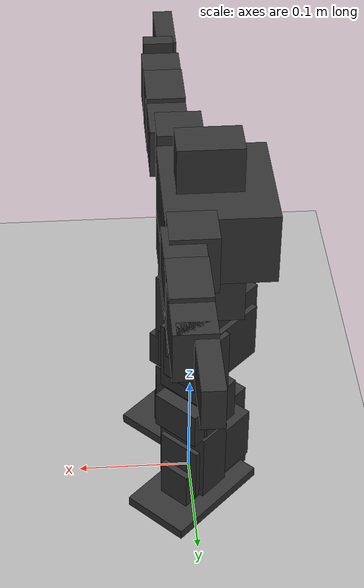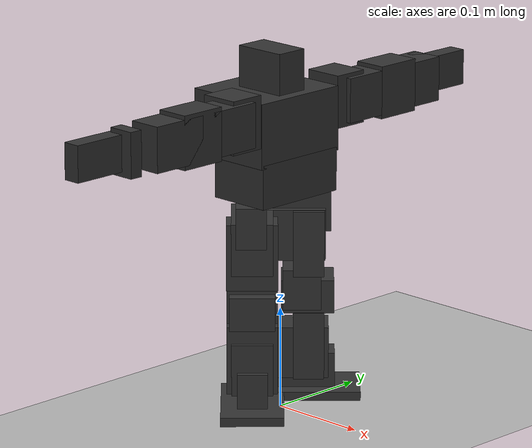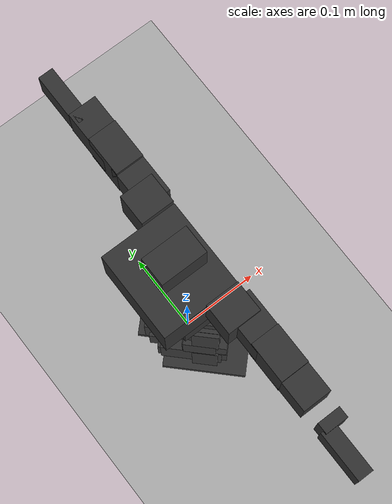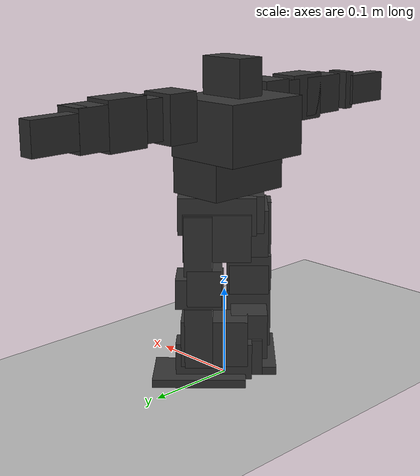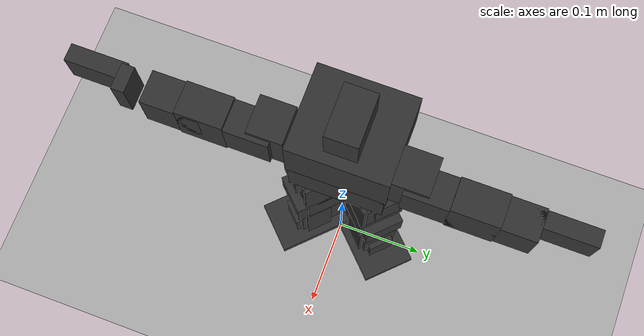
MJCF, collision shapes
<?xml version='1.0' encoding='utf-8'?>
<mujoco model="typea">
  <compiler angle="radian" meshdir="meshes" coordinate="local" />

  <option timestep="0.001" gravity="0 0 -9.81">
    <flag warmstart="enable"/>
  </option>

  <default>
    <mesh scale="0.001 0.001 0.001" />
    <geom rgba="0.7 0.7 0.7 1.0" />
    <joint damping="0.2" frictionloss="0.001" />
    <default class="visual">
      <geom contype="0" conaffinity="0" group="2" />
    </default>
    <default class="collision">
      <geom contype="1" conaffinity="1" group="3" />
    </default>
  </default>

  <asset>
    <mesh name="8b120736_BPF-CHEST-F_FCD-Conv_BDR-Col" file="8b120736_BPF-CHEST-F_FCD-Conv_BDR-Col.stl" scale="0.001 0.001 0.001" />
    <mesh name="94afeb60_BPF-CHEST-B_FCD-Conv_BDR-Col" file="94afeb60_BPF-CHEST-B_FCD-Conv_BDR-Col.stl" scale="0.001 0.001 0.001" />
    <mesh name="df1d2ef7_CM-5_FCD-Conv_BDR-Col" file="df1d2ef7_CM-5_FCD-Conv_BDR-Col.stl" scale="0.001 0.001 0.001" />
    <mesh name="2c813877_AX-S1_FCD-Conv_BDR-Col" file="2c813877_AX-S1_FCD-Conv_BDR-Col.stl" scale="0.001 0.001 0.001" />
    <mesh name="3c0b5d99_AX-12_FCD-Conv_BDR-Col" file="3c0b5d99_AX-12_FCD-Conv_BDR-Col.stl" scale="0.001 0.001 0.001" />
    <mesh name="d8612dc6_FP04-F3_FCD-Conv_BDR-Col" file="d8612dc6_FP04-F3_FCD-Conv_BDR-Col.stl" scale="0.001 0.001 0.001" />
    <mesh name="11c5acbd_FP04-F1_FCD-Conv_BDR-Col" file="11c5acbd_FP04-F1_FCD-Conv_BDR-Col.stl" scale="0.001 0.001 0.001" />
    <mesh name="5f501081_BPF-BU_FCD-Conv_BDR-Col" file="5f501081_BPF-BU_FCD-Conv_BDR-Col.stl" scale="0.001 0.001 0.001" />
    <mesh name="c9bc5e6a_BPF-WA_FCD-Conv_BDR-Col" file="c9bc5e6a_BPF-WA_FCD-Conv_BDR-Col.stl" scale="0.001 0.001 0.001" />
    <mesh name="b04d8bdf_FP04-F2_FCD-Conv_BDR-Col" file="b04d8bdf_FP04-F2_FCD-Conv_BDR-Col.stl" scale="0.001 0.001 0.001" />
    <mesh name="abc2df66_FP04-F11_FCD-Conv_BDR-Col" file="abc2df66_FP04-F11_FCD-Conv_BDR-Col.stl" scale="0.001 0.001 0.001" />
    <mesh name="df207a8e_FP04-F5_FCD-Conv_BDR-Col" file="df207a8e_FP04-F5_FCD-Conv_BDR-Col.stl" scale="0.001 0.001 0.001" />
    <mesh name="c44f3233_FP04-F6_FCD-Conv_BDR-Col" file="c44f3233_FP04-F6_FCD-Conv_BDR-Col.stl" scale="0.001 0.001 0.001" />
    <mesh name="4aa1180e_FP04-F7_FCD-Conv_BDR-Col" file="4aa1180e_FP04-F7_FCD-Conv_BDR-Col.stl" scale="0.001 0.001 0.001" />
    <mesh name="9856e80b_FP04-F4_FCD-Conv_BDR-Col" file="9856e80b_FP04-F4_FCD-Conv_BDR-Col.stl" scale="0.001 0.001 0.001" />
    <mesh name="bc9e07fb_FP04-F12_FCD-Conv_BDR-Col" file="bc9e07fb_FP04-F12_FCD-Conv_BDR-Col.stl" scale="0.001 0.001 0.001" />
    <mesh name="916d31db_Bioloid_CUERPO_vis_4" file="916d31db_Bioloid_CUERPO_vis_4.stl" scale="1.0 1.0 1.0" />
    <mesh name="fe3dec6d_Bioloid_CUERPO_vis_2" file="fe3dec6d_Bioloid_CUERPO_vis_2.stl" scale="1.0 1.0 1.0" />
    <!-- Scene textures/materials -->
    <texture type="skybox" builtin="gradient" rgb1="0.3 0.5 0.7" rgb2="0 0 0" width="512" height="3072"/>
    <texture type="2d" name="groundplane" builtin="checker" mark="edge"
      rgb1="0.2 0.3 0.4" rgb2="0.1 0.2 0.3"
      markrgb="0.8 0.8 0.8" width="300" height="300"/>
    <material name="groundplane" texture="groundplane" texuniform="true" texrepeat="5 5" reflectance="0.2"/>
  </asset>

  <worldbody>
    <!--light mode="targetbodycom" target="torso_link" pos="4 0 1"/-->

    <!-- Ground plane for collision -->
    <!--geom name="floor" type="plane" size="5 5 0.1" rgba="0.8 0.8 0.8 1"/-->

    <!-- Scene light -->
    <light pos="0 0 1.5" dir="0 0 -1" directional="true"/>
    <!-- Ground plane from scene (remove your duplicate floor geom if needed) -->
    <geom name="floor" size="0 0 1" type="plane" material="groundplane" contype="1" conaffinity="1"/>

    <body name="torso_link" pos="0 0 0.30">
      <!-- Add freejoint for floating base -->
      <!--freejoint/-->

    <geom mesh="916d31db_Bioloid_CUERPO_vis_4" type="mesh" pos="0 0 -0.01" euler="0 0 0" rgba="1 0 0 0.95" class="visual" />
    <geom mesh="fe3dec6d_Bioloid_CUERPO_vis_2" type="mesh" pos="0 0 0" euler="0 0 0" rgba="1 0 0 0.95" class="visual" />
    <geom mesh="94afeb60_BPF-CHEST-B_FCD-Conv_BDR-Col" type="mesh" pos="0 0 0" euler="0 1.5708 1.5708" class="visual" />
    <geom mesh="8b120736_BPF-CHEST-F_FCD-Conv_BDR-Col" type="mesh" pos="0 0 0" euler="0 1.5708 1.5708" class="visual" />
    <geom mesh="df1d2ef7_CM-5_FCD-Conv_BDR-Col" type="mesh" pos="-0.032 0 -0.015" euler="3.141592653589793 0 1.5707963267948966" class="visual" />
    <!--geom mesh="2c813877_AX-S1_FCD-Conv_BDR-Col" type="mesh" pos="0 0 0.025" euler="0 -1.5707963267948966 -1.5707963267948966" class="visual" /-->
    <!--geom mesh="3c0b5d99_AX-12_FCD-Conv_BDR-Col" type="mesh" pos="0 -0.032 0" euler="0 1.5707963267948966 0" class="visual" /-->
    <geom mesh="d8612dc6_FP04-F3_FCD-Conv_BDR-Col" type="mesh" pos="-0.019 -0.032 -0.0145" euler="-1.57 3.141592653589793 1.5707963267948966" class="visual" />
    <!--geom mesh="3c0b5d99_AX-12_FCD-Conv_BDR-Col" type="mesh" pos="0 0.032 0"  euler="0 1.5707 1.5707963267948966" class="visual" /-->
    <geom mesh="d8612dc6_FP04-F3_FCD-Conv_BDR-Col" type="mesh" pos="-0.019 0.032 -0.0145" euler="-1.5707 3.141592653589793 1.5707963267948966" class="visual" />
    <geom mesh="d8612dc6_FP04-F3_FCD-Conv_BDR-Col" type="mesh" pos="0.0175 0 -0.0655" euler="0 0 1.5707963267948966" class="visual" />
    <geom mesh="d8612dc6_FP04-F3_FCD-Conv_BDR-Col" type="mesh" pos="-0.0175 0 -0.0655" euler="0 0 -1.5707963267948966" class="visual" />
    <geom mesh="3c0b5d99_AX-12_FCD-Conv_BDR-Col" type="mesh" pos="0 -0.0385 -0.0655" euler="0 3.1415 3.1415" class="visual" />
    <geom mesh="3c0b5d99_AX-12_FCD-Conv_BDR-Col" type="mesh" pos="0 0.0385 -0.0655" euler="0 3.1415 0" class="visual" />
    <geom name="head_collision" size="0.027 0.0165 0.022" pos="-0.0122 0 0.035" type="box" rgba="0.2 0.2 0.2 0.1" class="collision" />
    <geom name="torso_collision_top" size="0.04525 0.0515 0.03175" pos="-0.019 0 -0.015" type="box" rgba="0.2 0.2 0.2 0.1" class="collision" />
    <geom name="torso_collision_bottom" size="0.0325 0.0495 0.0215" pos="-0.00625 0 -0.0648" type="box" rgba="0.2 0.2 0.2 0.1" class="collision" />
    <!-- Torso inertial properties -->
    <inertial pos="-0.0141 0 -0.0199" mass="0.411" diaginertia="7.8941435e-04 7.0070709e-04 5.6784609e-04"/>

    <body name="r_shoulder_swing_link" pos="0 -0.032 0" quat="0.5 0.5 0.5 -0.5">
      <geom mesh="11c5acbd_FP04-F1_FCD-Conv_BDR-Col" type="mesh" pos="0 0.014 0.044" euler="0 3.14159 3.14159" class="visual" />
      <inertial pos="0 0.006 0.0375" quat="0 0.707107 0 0.707107" mass="0.01" diaginertia="3.52e-06 3.33e-06 2.35e-06" />
      <joint name="r_shoulder_swing_joint" pos="0 0 0" axis="0 0 1" range="-1 1.5708" actuatorfrcrange="-2.8 2.8" />
      <geom name="r_shoulder_collision" size="0.026 0.0195 0.018" pos="0 0.006 0.0375" type="box" rgba="0.2 0.2 0.2 0.1" class="collision" />
      <body name="r_upper_arm_link" pos="0 0.014 0.044" quat="0.707107 0 -0.707107 0">
        <geom mesh="3c0b5d99_AX-12_FCD-Conv_BDR-Col" type="mesh" pos="0 0 0" euler="0 0 1.5708" class="visual" />
        <geom mesh="5f501081_BPF-BU_FCD-Conv_BDR-Col" type="mesh" pos="0 0 -0.01850" euler="0 -1.5708 1.5708" class="visual" />
        <geom mesh="c9bc5e6a_BPF-WA_FCD-Conv_BDR-Col" type="mesh" pos="0 0 -0.019" euler="0 -1.5708 1.5708" class="visual" />
        <geom mesh="d8612dc6_FP04-F3_FCD-Conv_BDR-Col" type="mesh" pos="0.0415 0 0" euler="0 0 1.5708" class="visual" />
        <geom mesh="b04d8bdf_FP04-F2_FCD-Conv_BDR-Col" type="mesh" pos="0.0675 0 0" euler="1.5708 -1.5708 1.5708" class="visual" />
        <inertial pos="0.03536 0 0" quat="0.5 0.5 0.5 0.5" mass="0.07" diaginertia="5.746e-05 5.024e-05 1.99e-05" />
        <joint name="r_shoulder_lateral_joint" pos="0 0 0" axis="0 0 -1" range="-1.5 1.5" actuatorfrcrange="-2.8 2.8" />
        <geom name="r_upper arm_collision_proximal" size="0.027 0.0165 0.022" pos="0.0148 0 0" type="box" rgba="0.2 0.2 0.2 0.1" class="collision" />
        <geom name="r_upper arm_collision_distal" size="0.0235 0.0165 0.026" pos="0.0555 0 0" type="box" rgba="0.2 0.2 0.2 0.1" class="collision" />
        <body name="r_lower_arm_link" pos="0.0675 0 0">
          <geom mesh="3c0b5d99_AX-12_FCD-Conv_BDR-Col" type="mesh" pos="0 0 0" euler="0 0 1.5708" class="visual" />
          <geom mesh="5f501081_BPF-BU_FCD-Conv_BDR-Col" type="mesh" pos="0 0 0.0185" euler="0 1.5708 1.5708" class="visual" />
          <geom mesh="c9bc5e6a_BPF-WA_FCD-Conv_BDR-Col" type="mesh" pos="0 0 0.019" euler="0 1.5708 1.5708" class="visual" />
          <geom mesh="d8612dc6_FP04-F3_FCD-Conv_BDR-Col" type="mesh" pos="0.0415 0 0" euler="0 3.1416 -1.5708" class="visual" />
          <inertial pos="0.00554868 -0.0067729 -0.000515957" quat="0.479854 0.473689 0.522751 0.521624" mass="0.068" diaginertia="7.12121e-05 6.73943e-05 1.78853e-05" />
          <joint name="r_elbow_joint" pos="0 0 0" axis="0 0 -1" range="-1.77 1.77" actuatorfrcrange="-2.8 2.8" />
          <geom name="r_lower_arm_collision" size="0.029 0.0165 0.022" pos="0.017 0 0" type="box" rgba="0.2 0.2 0.2 0.1" class="collision" />
          <body name="r_hand_link" pos="0.03 0 0">
            <geom mesh="abc2df66_FP04-F11_FCD-Conv_BDR-Col" type="mesh" pos="0 0 0" euler="-3.14 01.57 0" class="visual" />
            <geom name="r_palm_collision" size="0.00655 0.01325 0.022" pos="0.039 0 0" type="box" rgba="0.2 0.2 0.2 0.1" class="collision" />
            <geom name="r_fingers_collision" size="0.02875 0.00875 0.0175" pos="0.0701 -0.0077 0" type="box" rgba="0.2 0.2 0.2 0.1" class="collision" />
          </body>
        </body>
      </body>
    </body>
    <body name="l_shoulder_swing_link" pos="0 0.032 0" quat="0.5 -0.5 -0.5 -0.5">
      <geom mesh="11c5acbd_FP04-F1_FCD-Conv_BDR-Col" type="mesh" pos="0 0.014 0.044" euler="0 3.14159 3.14159" class="visual" />
      <inertial pos="0 0.006 0.0375" quat="0 0.707107 0 0.707107" mass="0.01" diaginertia="3.52e-06 3.33e-06 2.35e-06" />
      <joint name="l_shoulder_swing_joint" pos="0 0 0" axis="0 0 1" range="-1 1.5708" actuatorfrcrange="-2.8 2.8" />
      <geom name="l_shoulder_collision" size="0.026 0.0195 0.018" pos="0 0.006 0.0375" type="box" rgba="0.2 0.2 0.2 0.1" class="collision" />
      <body name="l_upper_arm_link" pos="0 0.014 0.044" quat="0.707107 0 -0.707107 0">
        <geom mesh="3c0b5d99_AX-12_FCD-Conv_BDR-Col" type="mesh" pos="0 0 0" euler="0 3.14159 -1.5708" class="visual" />
        <geom mesh="5f501081_BPF-BU_FCD-Conv_BDR-Col" type="mesh" pos="0 0 0.01850" euler="0 1.5708 1.5708" class="visual" />
        <geom mesh="c9bc5e6a_BPF-WA_FCD-Conv_BDR-Col" type="mesh" pos="0 0 0.019" euler="0 1.5708 1.5708" class="visual" />
        <geom mesh="d8612dc6_FP04-F3_FCD-Conv_BDR-Col" type="mesh" pos="0.0415 0 0" euler="3.14 0 1.5708" class="visual" />
        <geom mesh="b04d8bdf_FP04-F2_FCD-Conv_BDR-Col" type="mesh" pos="0.0675 0 0" euler="1.5708 -1.5708 1.5708" class="visual" />
        <inertial pos="0.03536 0 0" quat="0.5 0.5 0.5 0.5" mass="0.07" diaginertia="5.746e-05 5.024e-05 1.99e-05" />
        <joint name="l_shoulder_lateral_joint" pos="0 0 0" axis="0 0 1" range="-1.5 1.5" actuatorfrcrange="-2.8 2.8" />
        <geom name="l_upper arm_collision_proximal" size="0.027 0.0165 0.022" pos="0.0148 0 0" type="box" rgba="0.2 0.2 0.2 0.1" class="collision" />
        <geom name="l_upper arm_collision_distal" size="0.0235 0.0165 0.026" pos="0.0555 0 0" type="box" rgba="0.2 0.2 0.2 0.1" class="collision" />
        <body name="l_lower_arm_link" pos="0.0675 0 0">
          <geom mesh="3c0b5d99_AX-12_FCD-Conv_BDR-Col" type="mesh" pos="0 0 0" euler="0 3.14159 -1.5708" class="visual" />
          <geom mesh="5f501081_BPF-BU_FCD-Conv_BDR-Col" type="mesh" pos="0 0 0.0185" euler="-1.5708 3.14 -1.5708" class="visual" />
          <geom mesh="c9bc5e6a_BPF-WA_FCD-Conv_BDR-Col" type="mesh" pos="0 0 0.019" euler="-1.5708 3.14 -1.5708" class="visual" />
          <geom mesh="d8612dc6_FP04-F3_FCD-Conv_BDR-Col" type="mesh" pos="0.0415 0 0" euler="0 3.14 -1.5708" class="visual" />
          <inertial pos="0.00641783 0.00557279 -0.000592108" quat="0.519286 0.520103 0.476239 0.482733" mass="0.068" diaginertia="7.03478e-05 6.6411e-05 1.77672e-05" />
          <joint name="l_elbow_joint" pos="0 0 0" axis="0 0 1" range="-1.77 1.77" actuatorfrcrange="-2.8 2.8" />
          <geom name="l_lower_arm_collision" size="0.029 0.0165 0.022" pos="0.017 0 0" type="box" rgba="0.2 0.2 0.2 0.1" class="collision" />
          <body name="l_hand_link" pos="0 0 0">
            <geom mesh="abc2df66_FP04-F11_FCD-Conv_BDR-Col" type="mesh" pos="0.0415 0 0" euler="-3.14 1.57 0" class="visual" />
            <geom name="l_palm_collision" size="0.00655 0.01325 0.022" pos="0.039 0 0" type="box" rgba="0.2 0.2 0.2 0.1" class="collision" />
            <geom name="l_fingers_collision" size="0.02875 0.00875 0.0175" pos="0.0701 -0.0077 0" type="box" rgba="0.2 0.2 0.2 0.1" class="collision" />
          </body>
        </body>
      </body>
    </body>
    <body name="r_hip_twist_link" pos="0 -0.0385 -0.0655" quat="0 -0.383885 0.923381 0">
      <geom mesh="df207a8e_FP04-F5_FCD-Conv_BDR-Col" type="mesh" pos="0 0.02 0.05" euler="3.14159 0 3.14159" class="visual" />
      <inertial pos="0.0008 0.02 0.041" quat="0.707107 0.707107 0 0" mass="0.016" diaginertia="1.1372e-05 1.0307e-05 3.3083e-06" />
      <joint name="r_hip_twist_joint" pos="0 0 0" axis="0 0 1" range="-0.8 0.8" actuatorfrcrange="-10 10" />
      <geom name="r_hip_twist_collision" size="0.0145 0.0415 0.02025" pos="0.0008 0.02 0.041" type="box" rgba="0.2 0.2 0.2 0.1" class="collision" />
      <body name="r_hip_lateral_link" pos="0 0 0.05" quat="0.707107 -0.707107 0 0">
        <!-- URDF rpy="0 0 -0.0" -> euler="0 0 0" -->
        <geom mesh="3c0b5d99_AX-12_FCD-Conv_BDR-Col" type="mesh" pos="0 0 0.0353" euler="0 0 0" class="visual" />
        <!-- URDF rpy="0 -1.5708 -1.5708" -> euler="0 -1.5708 -1.5708" -->
        <geom mesh="c44f3233_FP04-F6_FCD-Conv_BDR-Col" type="mesh" pos="-0.019 -0.0145 0.0513" euler="-1.5708 0 -1.5708" class="visual" />
        <!-- URDF rpy="0 -1.5708 1.5708" -> euler="0 -1.5708 1.5708" -->
        <geom mesh="c44f3233_FP04-F6_FCD-Conv_BDR-Col" type="mesh" pos="0.019 -0.0145 0.0513" euler="-1.5708 3.14 -1.5708" class="visual" />
        <!-- URDF rpy="-0.0 -1.5708 0" -> euler="0 -1.5708 0" -->
        <geom mesh="3c0b5d99_AX-12_FCD-Conv_BDR-Col" type="mesh" pos="0 0 0.003" euler="0 1.5708 0" class="visual" />
        <!-- URDF rpy="-1.5708 -0.0 0" -> euler="-1.5708 0 0" -->
        <geom mesh="5f501081_BPF-BU_FCD-Conv_BDR-Col" type="mesh" pos="0 0 -0.0147" euler="1.5708 0 3.14" class="visual" />
        <!-- URDF rpy="1.5708 -0.0 1.5708" -> euler="1.5708 0 1.5708" -->
        <geom mesh="4aa1180e_FP04-F7_FCD-Conv_BDR-Col" type="mesh" pos="0 -0.0145 -0.0157" euler="0 1.57 1.5708" class="visual" />
        <inertial pos="0 -0.0135 0.02" mass="0.12" diaginertia="7.79941e-05 6.79841e-05 4.20099e-05" />
        <joint name="r_hip_lateral_joint" pos="0 0 0" axis="0 0 -1" range="-0.8 0.8" actuatorfrcrange="-10 10" />
        <geom name="r_hip_lateral_collision" size="0.02 0.0255 0.03605" pos="0 -0.0135 0.02" type="box" rgba="0.2 0.2 0.2 0.1" class="collision" />
        <body name="r_upper_leg_link" quat="0.5 0.5 -0.5 -0.5">
          <!-- URDF rpy="-1.5708 -1.5708 -1.5708" -> euler="-1.5708 -1.5708 -1.5708" -->
          <geom mesh="9856e80b_FP04-F4_FCD-Conv_BDR-Col" type="mesh" pos="0 0 0" euler="-1.5708 1.5708 -1.5708" class="visual" />
          <!-- URDF rpy="1.5708 1.5708 -1.5708" -> euler="1.5708 1.5708 -1.5708" -->
          <geom mesh="11c5acbd_FP04-F1_FCD-Conv_BDR-Col" type="mesh" pos="0.075 0.0145 0" euler="1.5708 -1.5708 -1.5708" class="visual" />
          <inertial pos="0.0413221 0.00280897 0" quat="0.472541 0.472541 0.526028 0.526028" mass="0.03" diaginertia="2.96116e-05 2.64478e-05 8.84124e-06" />
          <joint name="r_hip_swing_joint" pos="0 0 0" axis="0 0 1" range="-2 2" actuatorfrcrange="-10 10" />
          <geom name="r_upper_leg_proximal_collision" size="0.0325 0.015 0.0245" pos="0.0214 0 0" type="box" rgba="0.2 0.2 0.2 0.1" class="collision" />
          <geom name="r_upper_leg_distal_collision" size="0.02 0.01855 0.0245" pos="0.0675 0.0065 0" type="box" rgba="0.2 0.2 0.2 0.1" class="collision" />
          <body name="r_lower_leg_link" pos="0.075 0.0145 0">
            <!-- URDF rpy="0 0 0" -> euler="0 0 0" -->
            <geom mesh="3c0b5d99_AX-12_FCD-Conv_BDR-Col" type="mesh" pos="0 0 0" euler="0 0 0" class="visual" />
            <!-- URDF rpy="0 0 1.5708" -> euler="0 0 1.5708" -->
            <geom mesh="d8612dc6_FP04-F3_FCD-Conv_BDR-Col" type="mesh" pos="0.019 -0.0145 0" euler="0 0 1.5708" class="visual" />
            <!-- URDF rpy="1.5708 1.5708 -1.5708" -> euler="1.5708 1.5708 -1.5708" -->
            <geom mesh="9856e80b_FP04-F4_FCD-Conv_BDR-Col" type="mesh" pos="0.071 -0.0145 0" euler="1.5708 -1.5708 -1.5708" class="visual" />
            <inertial pos="0.0280842 -0.0140708 0" quat="0.504228 0.504228 0.495736 0.495736" mass="0.08" diaginertia="8.23327e-05 7.85267e-05 2.55464e-05" />
            <joint name="r_knee_joint" pos="0 0 0" axis="0 0 -1" range="-2 0" actuatorfrcrange="-10 10" />
            <geom name="r_lower_leg_proximal_collision" size="0.0165 0.0255 0.022" pos="0 -0.0135 0" type="box" rgba="0.2 0.2 0.2 0.1" class="collision" />
            <geom name="r_lower_leg_distal_collision" size="0.0335 0.015 0.0245" pos="0.0492 -0.0145 0" type="box" rgba="0.2 0.2 0.2 0.1" class="collision" />
            <body name="r_ankle_swing_link" pos="0.071 -0.0145 0" quat="0 1 0 0">
              <!-- URDF rpy=" -0.0  3.14159 -1.5708" -> euler="0 3.14159 -1.5708" -->
              <geom mesh="3c0b5d99_AX-12_FCD-Conv_BDR-Col" type="mesh" pos="0 0 0" euler="3.14159 0 -1.5708" class="visual" />
              <!-- URDF rpy="3.14159 -0.0 0" -> euler="3.14159 0 0" -->
              <geom mesh="4aa1180e_FP04-F7_FCD-Conv_BDR-Col" type="mesh" pos="-0.0145 0.019 0" euler="3.14 0 0" class="visual" />
              <!-- URDF rpy="0 1.5708 -1.5708" -> euler="0 1.5708 -1.5708" -->
              <geom mesh="3c0b5d99_AX-12_FCD-Conv_BDR-Col" type="mesh" pos="0 -0.032 0" euler="1.5708 0 -1.5708" class="visual" />
              <!-- URDF rpy="-1.5708 0 -1.5708" -> euler="-1.5708 0 -1.5708" -->
              <geom mesh="c44f3233_FP04-F6_FCD-Conv_BDR-Col" type="mesh" pos="-0.0145 -0.048 0.019" euler="0 1.5708 -1.5708" class="visual" />
              <!-- URDF rpy="1.5708 0 -1.5708" -> euler="1.5708 0 -1.5708" -->
              <geom mesh="c44f3233_FP04-F6_FCD-Conv_BDR-Col" type="mesh" pos="-0.0145 -0.048 -0.019" euler="0 -1.5708 -1.5708" class="visual" />
              <inertial pos="-0.0135 -0.0167 0" quat="0.5 0.5 -0.5 0.5" mass="0.0685" diaginertia="4.45216e-05 3.88076e-05 2.39807e-05" />
              <joint name="r_ankle_swing_joint" pos="0 0 0" axis="0 0 1" range="-0.4 2" actuatorfrcrange="-10 10" />
              <geom name="r_ankle_swing_collision" size="0.0255 0.03605 0.02" pos="-0.0135 -0.0167 0" type="box" rgba="0.2 0.2 0.2 0.1" class="collision" />
              <body name="r_ankle_lateral_link" quat="0.707107 -0.707107 0 0">
                <!-- URDF rpy="1.5708 0 0" -> euler="1.5708 0 0" -->
                <geom mesh="5f501081_BPF-BU_FCD-Conv_BDR-Col" type="mesh" pos="0 0 0.015" euler="1.57 1.5708 0" class="visual" />
                <!-- URDF rpy="-1.5708 -0.0  -1.5708" -> euler="-1.5708 0 -1.5708" -->
                <geom mesh="df207a8e_FP04-F5_FCD-Conv_BDR-Col" type="mesh" pos="0 0 -0.0155" euler="-3.14 1.5708 -1.5708" class="visual" />
                <inertial pos="0.0110662 0.00171994 0.00142326" quat="0.778579 -0.0363424 -0.0287513 0.625833" mass="0.03" diaginertia="3.27142e-05 2.73521e-05 1.67953e-05" />
                <joint name="r_ankle_lateral_joint" pos="0 0 0" axis="0 0 -1" range="-0.8 0.8" actuatorfrcrange="-10 10" />
                <geom name="r_ankle_lateral_collision" size="0.02025 0.0145 0.0415" pos="0.009 0 -0.016" type="box" rgba="0.2 0.2 0.2 0.1" class="collision" />
                <body name="r_foot_link" pos="0 0 0">
                  <!-- URDF rpy="0 1.5708 -1.5708" -> euler="0 1.5708 -1.5708" -->
                  <geom mesh="bc9e07fb_FP04-F12_FCD-Conv_BDR-Col" type="mesh" pos="0.0235 0 0" euler="1.5708 0 -1.5708" class="visual" />
                  <geom name="r_foot_collision" size="0.0045 0.0305 0.0505" pos="0.0277 0 0" type="box" rgba="0.2 0.2 0.2 0.1" class="collision" />
                </body>
              </body>
            </body>
          </body>
        </body>
      </body>
    </body>
    <body name="l_hip_twist_link" pos="0 0.0385 -0.0655" quat="0 0.383885 0.923381 0">
      <geom mesh="df207a8e_FP04-F5_FCD-Conv_BDR-Col" type="mesh" pos="0 -0.02 0.05" euler="3.14159 0 0" class="visual" />
      <inertial pos="0.0008 -0.02 0.041" quat="0.707107 0.707107 0 0" mass="0.016" diaginertia="1.1372e-05 1.0307e-05 3.3083e-06" />
      <joint name="l_hip_twist_joint" pos="0 0 0" axis="0 0 1" range="-0.8 0.8" actuatorfrcrange="-10 10" />
      <geom name="l_hip_twist_collision" size="0.0145 0.0415 0.02025" pos="0.0008 -0.02 0.041" type="box" rgba="0.2 0.2 0.2 0.1" class="collision" />
      <body name="l_hip_lateral_link" pos="0 0 0.05" quat="0.707107 0.707107 0 0">
        <!-- URDF rpy="0 0 3.14159" -> euler="0 0 3.14159" -->
        <geom mesh="3c0b5d99_AX-12_FCD-Conv_BDR-Col" type="mesh" pos="0 0 0.0353" euler="0 0 3.14159" class="visual" />
        <!-- URDF rpy="0 -1.5708 1.5708" -> euler="0 -1.5708 1.5708" -->
        <geom mesh="c44f3233_FP04-F6_FCD-Conv_BDR-Col" type="mesh" pos="0.019 0.0145 0.0513" euler="-1.5708 -3.14 -1.5708" class="visual" />
        <!-- URDF rpy="0 -1.5708 -1.5708" -> euler="0 -1.5708 -1.5708" -->
        <geom mesh="c44f3233_FP04-F6_FCD-Conv_BDR-Col" type="mesh" pos="-0.019 0.0145 0.0513" euler="-1.5708 0 -1.5708" class="visual" />
        <!-- URDF rpy="3.14159 1.5708 0" -> euler="3.14159 1.5708 0" -->
        <geom mesh="3c0b5d99_AX-12_FCD-Conv_BDR-Col" type="mesh" pos="0 0 0.003" euler="-1.5708 1.57 0" class="visual" />
        <!-- URDF rpy="1.5708 3.14159 0" -> euler="1.5708 3.14159 0" -->
        <geom mesh="5f501081_BPF-BU_FCD-Conv_BDR-Col" type="mesh" pos="0 0 -0.0147" euler="3.14159 1.5708 0" class="visual" />
        <!-- URDF rpy="-1.5708 3.14159 1.5708" -> euler="-1.5708 3.14159 1.5708" -->
        <geom mesh="4aa1180e_FP04-F7_FCD-Conv_BDR-Col" type="mesh" pos="0 0.0145 -0.0157" euler="0 -1.5708 -1.5708" class="visual" />
        <inertial pos="0 0.0135 0.02" mass="0.12" diaginertia="7.7994e-05 6.7984e-05 4.20099e-05" />
        <joint name="l_hip_lateral_joint" pos="0 0 0" axis="0 0 -1" range="-0.8 0.8" actuatorfrcrange="-10 10" />
        <geom name="l_hip_lateral_collision" size="0.02 0.0255 0.03605" pos="0 0.0135 0.02" type="box" rgba="0.2 0.2 0.2 0.1" class="collision" />
        <body name="l_upper_leg_link" quat="0.5 0.5 -0.5 -0.5">
          <!-- URDF rpy="1.5708 1.5708 -1.5708" -> euler="1.5708 1.5708 -1.5708" -->
          <geom mesh="9856e80b_FP04-F4_FCD-Conv_BDR-Col" type="mesh" pos="0 0 0" euler="1.5708 -1.5708 -1.5708" class="visual" />
          <!-- URDF rpy="1.5708 -1.5708 1.5708" -> euler="1.5708 -1.5708 1.5708" -->
          <geom mesh="11c5acbd_FP04-F1_FCD-Conv_BDR-Col" type="mesh" pos="-0.075 0.0145 0" euler="-1.5708 1.5708 -1.5708" class="visual" />
          <inertial pos="-0.0413221 0.00280897 0" quat="0.526028 0.526028 0.472541 0.472541" mass="0.03" diaginertia="2.96116e-05 2.64478e-05 8.84124e-06" />
          <joint name="l_hip_swing_joint" pos="0 0 0" axis="0 0 1" range="-2 2" actuatorfrcrange="-10 10" />
          <geom name="l_upper_leg_proximal_collision" size="0.0325 0.015 0.0245" pos="-0.0214 0 0" type="box" rgba="0.2 0.2 0.2 0.1" class="collision" />
          <geom name="l_upper_leg_distal_collision" size="0.02 0.01855 0.0245" pos="-0.0675 0.0065 0" type="box" rgba="0.2 0.2 0.2 0.1" class="collision" />
          <body name="l_lower_leg_link" pos="-0.075 0.0145 0">
            <!-- URDF rpy="0 0 0" -> euler="0 0 0" -->
            <geom mesh="3c0b5d99_AX-12_FCD-Conv_BDR-Col" type="mesh" pos="0 0 0" euler="0 0 0" class="visual" />
            <!-- URDF rpy="0 0 -1.5708" -> euler="0 0 -1.5708" -->
            <geom mesh="d8612dc6_FP04-F3_FCD-Conv_BDR-Col" type="mesh" pos="-0.019 -0.0145 0" euler="0 0 -1.5708" class="visual" />
            <!-- URDF rpy="-1.5708 -1.5708 -1.5708" -> euler="-1.5708 -1.5708 -1.5708" -->
            <geom mesh="9856e80b_FP04-F4_FCD-Conv_BDR-Col" type="mesh" pos="-0.071 -0.0145 0" euler="-1.5708 1.5708 -1.5708" class="visual" />
            <inertial pos="-0.0280842 -0.0140708 0" quat="0.495736 0.495736 0.504228 0.504228" mass="0.08" diaginertia="8.23324e-05 7.8527e-05 2.55466e-05" />
            <joint name="l_knee_joint" pos="0 0 0" axis="0 0 -1" range="0 2" actuatorfrcrange="-10 10" />
            <geom name="l_lower_leg_proximal_collision" size="0.0165 0.0255 0.022" pos="0 -0.0135 0" type="box" rgba="0.2 0.2 0.2 0.1" class="collision" />
            <geom name="l_lower_leg_distal_collision" size="0.0335 0.015 0.0245" pos="-0.0492 -0.0145 0" type="box" rgba="0.2 0.2 0.2 0.1" class="collision" />
            <body name="l_ankle_swing_link" pos="-0.071 -0.0145 0" quat="0 1 0 0">
              <!-- URDF rpy=" 3.14159  0.0 -1.5708" -> euler="3.14159 0 -1.5708" -->
              <geom mesh="3c0b5d99_AX-12_FCD-Conv_BDR-Col" type="mesh" pos="0 0 0" euler="0 3.14159 -1.5708" class="visual" />
              <!-- URDF rpy="3.14159 3.14159 0" -> euler="3.14159 3.14159 0" -->
              <geom mesh="4aa1180e_FP04-F7_FCD-Conv_BDR-Col" type="mesh" pos="0.0145 0.019 0" euler="3.14159 3.14159 0" class="visual" />
              <!-- URDF rpy="0 -1.5708 1.5708" -> euler="0 -1.5708 1.5708" -->
              <geom mesh="3c0b5d99_AX-12_FCD-Conv_BDR-Col" type="mesh" pos="0 -0.032 0" euler="-1.5708 0 1.5708" class="visual" />
              <!-- URDF rpy="1.5708 0 -1.5708" -> euler="1.5708 0 -1.5708" -->
              <geom mesh="c44f3233_FP04-F6_FCD-Conv_BDR-Col" type="mesh" pos="0.0145 -0.048 -0.019" euler="0 -1.5708 -1.5708" class="visual" />
              <!-- URDF rpy="-1.5708 0 -1.5708" -> euler="-1.5708 0 -1.5708" -->
              <geom mesh="c44f3233_FP04-F6_FCD-Conv_BDR-Col" type="mesh" pos="0.0145 -0.048 0.019" euler="0 1.5708 -1.5708" class="visual" />
              <inertial pos="0.0135 -0.0167 0" quat="0.5 0.5 -0.5 0.5" mass="0.0685" diaginertia="4.45216e-05 3.88076e-05 2.39807e-05" />
              <joint name="l_ankle_swing_joint" pos="0 0 0" axis="0 0 1" range="-2 0.4" actuatorfrcrange="-10 10" />
              <geom name="l_ankle_swing_collision" size="0.0255 0.03605 0.02" pos="0.0135 -0.0167 0" type="box" rgba="0.2 0.2 0.2 0.1" class="collision" />
              <body name="l_ankle_lateral_link" quat="0.707107 -0.707107 0 0">
                <!-- URDF rpy="1.5708 0 0" -> euler="1.5708 0 0" -->
                <geom mesh="5f501081_BPF-BU_FCD-Conv_BDR-Col" type="mesh" pos="0 0 0.015" euler="0 1.57 0" class="visual" />
                <!-- URDF rpy="1.5708 3.14159  -1.5708" -> euler="1.5708 3.14159 -1.5708" -->
                <geom mesh="df207a8e_FP04-F5_FCD-Conv_BDR-Col" type="mesh" pos="0 0 -0.0155" euler="0 -1.57 1.5708" class="visual" />
                <inertial pos="-0.0166338 -0.00175072 0.00142326" quat="0.868957 0.0102562 0.00317085 0.494771" mass="0.03" diaginertia="2.80077e-05 2.73576e-05 1.22613e-05" />
                <joint name="l_ankle_lateral_joint" pos="0 0 0" axis="0 0 -1" range="-0.8 0.8" actuatorfrcrange="-10 10" />
                <geom name="l_ankle_lateral_collision" size="0.02025 0.0145 0.0415" pos="-0.009 0 -0.016" type="box" rgba="0.2 0.2 0.2 0.1" class="collision" />
                <body name="l_foot_link" pos="0 0 0">
                  <!-- URDF rpy="3.14159 1.5708 -1.5708" -> euler="3.14159 1.5708 -1.5708" -->
                  <geom mesh="bc9e07fb_FP04-F12_FCD-Conv_BDR-Col" type="mesh" pos="-0.0235 0 0" euler="1.5708 3.14159 -1.5708" class="visual" />
                  <geom name="l_foot_collision" size="0.0045 0.0305 0.0505" pos="-0.0277 0 0" type="box" rgba="0.2 0.2 0.2 0.1" class="collision" />
                </body>
              </body>
            </body>
          </body>
        </body>
      </body>
    </body>
   </body>
  </worldbody>

  <!-- Contact exclusions to prevent self-collisions -->
  <contact>
    <exclude body1="r_hip_twist_link" body2="r_hip_lateral_link"/>
    <exclude body1="l_hip_twist_link" body2="l_hip_lateral_link"/>
    <exclude body1="r_shoulder_swing_link" body2="r_upper_arm_link"/>
    <exclude body1="l_shoulder_swing_link" body2="l_upper_arm_link"/>
  </contact>

  <!-- Actuators for control -->
  <actuator>
    <!-- Arms -->

    <!-- Legs -->

    <!-- Arms - with high kp for fast response -->
    <position name="r_shoulder_swing_act" joint="r_shoulder_swing_joint" ctrlrange="-1 1.5708" kp="100" kv="1"/>
    <position name="l_shoulder_swing_act" joint="l_shoulder_swing_joint" ctrlrange="-1 1.5708" kp="100" kv="1"/>
    <position name="r_shoulder_lateral_act" joint="r_shoulder_lateral_joint" ctrlrange="-1.5 1.5" kp="100" kv="1"/>
    <position name="l_shoulder_lateral_act" joint="l_shoulder_lateral_joint" ctrlrange="-1.5 1.5" kp="100" kv="1"/>
    <position name="r_elbow_act" joint="r_elbow_joint" ctrlrange="-1.77 1.77" kp="100" kv="1"/>
    <position name="l_elbow_act" joint="l_elbow_joint" ctrlrange="-1.77 1.77" kp="100" kv="1"/>

    <!-- Legs - with high kp for fast response -->
    <position name="r_hip_twist_act" joint="r_hip_twist_joint" ctrlrange="-0.8 0.8" kp="200" kv="2"/>
    <position name="l_hip_twist_act" joint="l_hip_twist_joint" ctrlrange="-0.8 0.8" kp="200" kv="2"/>
    <position name="r_hip_lateral_act" joint="r_hip_lateral_joint" ctrlrange="-0.8 0.8" kp="200" kv="2"/>
    <position name="l_hip_lateral_act" joint="l_hip_lateral_joint" ctrlrange="-0.8 0.8" kp="200" kv="2"/>
    <position name="r_hip_swing_act" joint="r_hip_swing_joint" ctrlrange="-2 2" kp="200" kv="2"/>
    <position name="l_hip_swing_act" joint="l_hip_swing_joint" ctrlrange="-2 2" kp="200" kv="2"/>
    <position name="r_knee_act" joint="r_knee_joint" ctrlrange="-2 0" kp="200" kv="2"/>
    <position name="l_knee_act" joint="l_knee_joint" ctrlrange="0 2" kp="200" kv="2"/>
    <position name="r_ankle_swing_act" joint="r_ankle_swing_joint" ctrlrange="-0.4 2" kp="200" kv="2"/>
    <position name="l_ankle_swing_act" joint="l_ankle_swing_joint" ctrlrange="-2 0.4" kp="200" kv="2"/>
    <position name="r_ankle_lateral_act" joint="r_ankle_lateral_joint" ctrlrange="-0.8 0.8" kp="200" kv="2"/>
    <position name="l_ankle_lateral_act" joint="l_ankle_lateral_joint" ctrlrange="-0.8 0.8" kp="200" kv="2"/>

  </actuator>

</mujoco>
